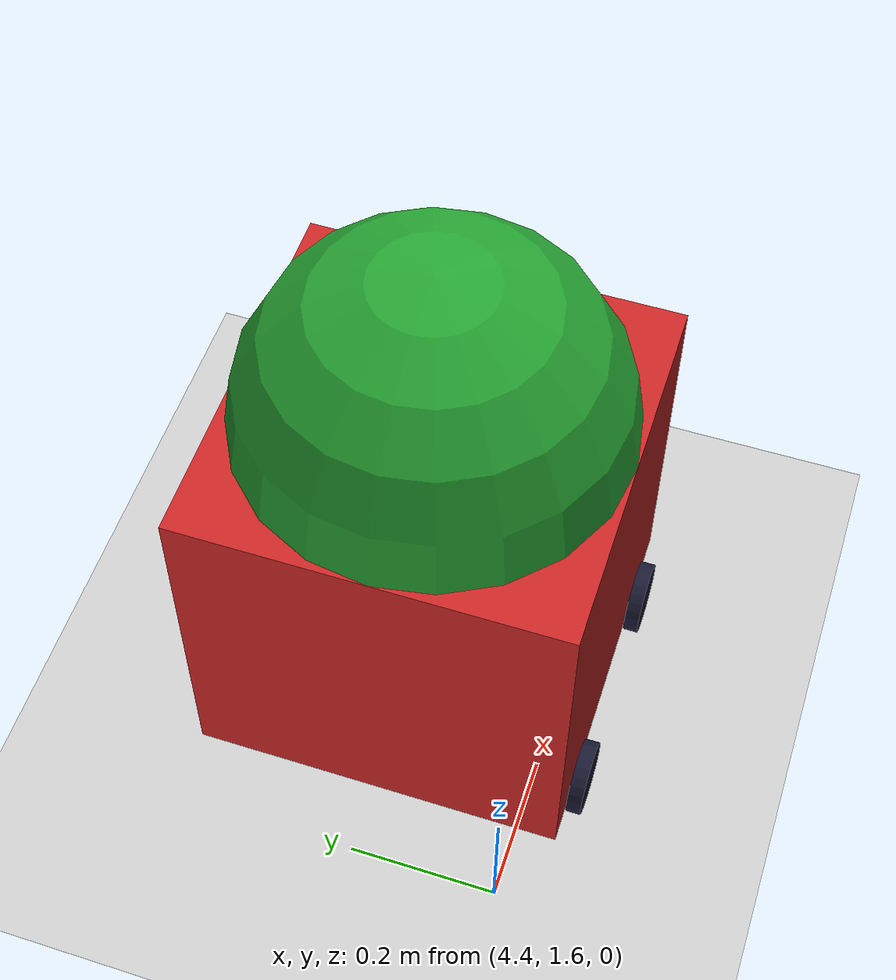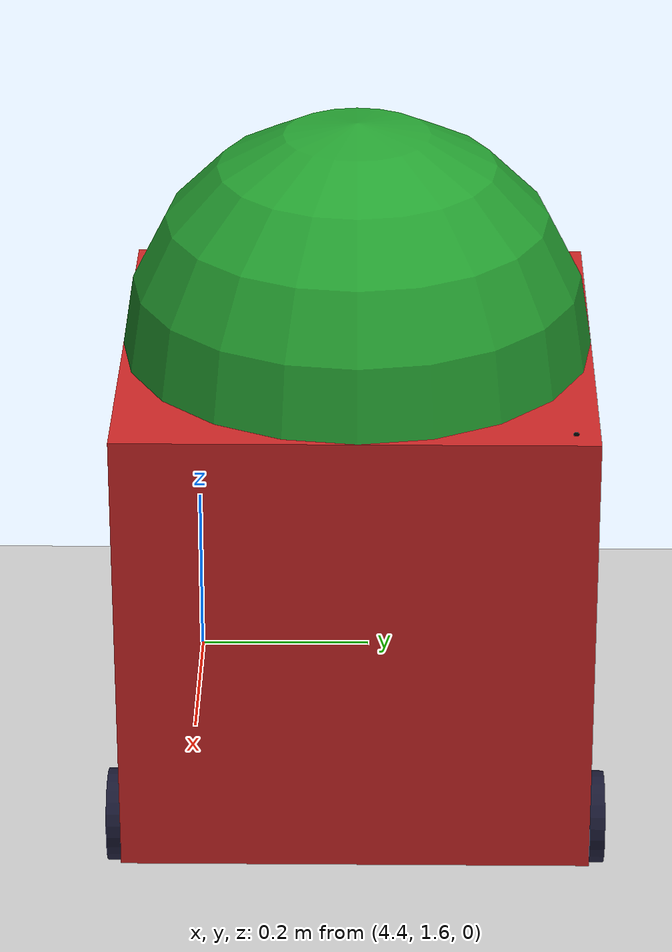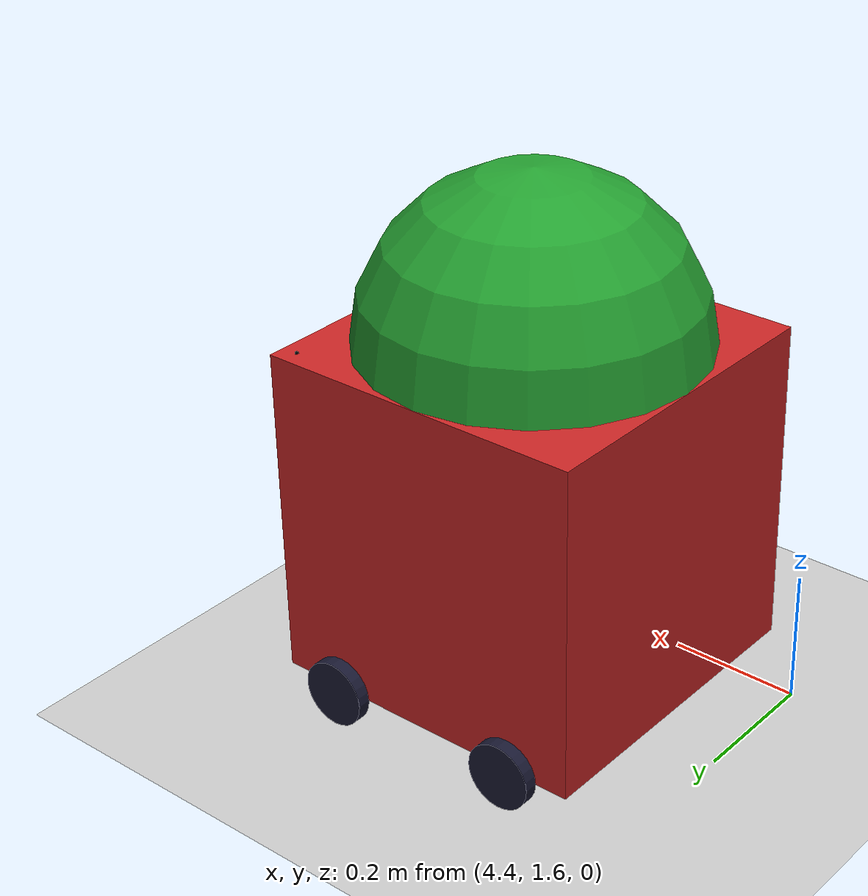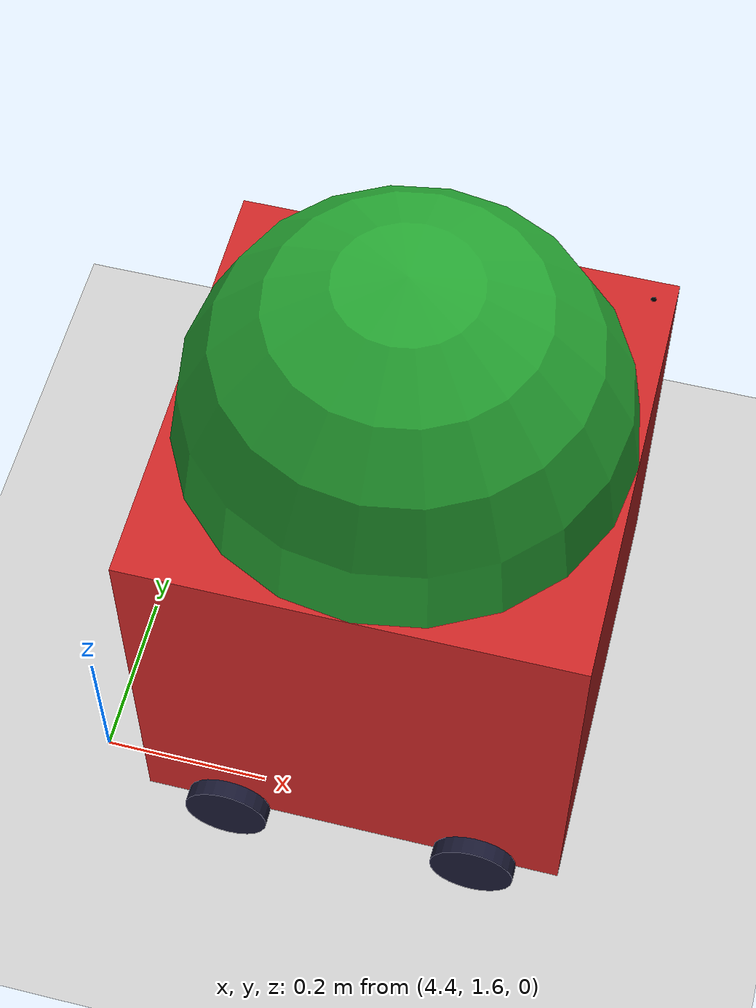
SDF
<sdf version="1.6">
 <world name="default">
  <model name="ground_plane">
   <static>1</static>
   <link name="link">
    <collision name="collision">
     <geometry><plane><normal>0 0 1</normal><size>100 100</size></plane></geometry>
     <surface><friction><ode><mu>100</mu><mu2>50</mu2></ode></friction></surface>
    </collision>
    <visual name="visual">
     <cast_shadows>0</cast_shadows>
     <geometry><plane><normal>0 0 1</normal><size>100 100</size></plane></geometry>
     <material>
      <script><uri>file://media/materials/scripts/gazebo.material</uri><name>Gazebo/Grey</name></script>
     </material>
    </visual>
   </link>
  </model>
  <model name="simplebot_0">
   <link name="robot_link">
    <pose>0 0 0.3 0 -0 0</pose>
    <inertial>
     <mass>1</mass>
     <inertia><ixx>1</ixx><ixy>0</ixy><ixz>0</ixz><iyy>1</iyy><iyz>0</iyz><izz>1</izz></inertia>
    </inertial>
    <visual name="head_visual">
     <pose>0 0 0.25 0 0 -2.5</pose>
     <geometry><sphere><radius>0.25</radius></sphere></geometry>
     <material>
      <shader type="pixel"><normal_map>__default__</normal_map></shader>
      <emissive>0 0 0 1</emissive>
      <ambient>0.3 0.3 0.3 1</ambient>
      <diffuse>0.7 0.7 0.7 1</diffuse>
      <specular>0.01 0.01 0.01 1</specular>
      <script><uri>file://media/materials/scripts/gazebo.material</uri><name>Gazebo/Green</name></script>
     </material>
    </visual>
    <visual name="body_visual">
     <geometry><box><size>0.5 0.5 0.5</size></box></geometry>
     <material>
      <shader type="pixel"><normal_map>__default__</normal_map></shader>
      <emissive>0 0 0 1</emissive>
      <ambient>1 0 0 1</ambient>
      <diffuse>1 0 0 1</diffuse>
      <specular>0.1 0.1 0.1 1</specular>
      <script><uri>file://media/materials/scripts/gazebo.material</uri><name>Gazebo/Red</name></script>
     </material>
    </visual>
    <visual name="power_led_visual">
     <pose>0.225 0.225 0.25 0 -0 0</pose>
     <geometry><sphere><radius>0.003</radius></sphere></geometry>
     <material>
      <ambient>0 0 0 1</ambient>
      <diffuse>0 0 0 1</diffuse>
      <specular>0 0 0 1</specular>
      <emissive>0 1 0 1</emissive>
     </material>
    </visual>
    <collision name="body_collision">
     <geometry><box><size>0.5 0.5 0.5</size></box></geometry>
     <surface>
      <friction>
       <ode><mu>1</mu><mu2>1</mu2><fdir1>0 0 0</fdir1><slip1>0</slip1><slip2>0</slip2></ode>
       <torsional>
        <coefficient>1</coefficient>
        <patch_radius>0</patch_radius>
        <surface_radius>0</surface_radius>
        <use_patch_radius>1</use_patch_radius>
        <ode><slip>0</slip></ode>
       </torsional>
      </friction>
      <bounce><restitution_coefficient>0</restitution_coefficient><threshold>1e+06</threshold></bounce>
      <contact>
       <collide_without_contact>0</collide_without_contact>
       <collide_without_contact_bitmask>1</collide_without_contact_bitmask>
       <collide_bitmask>1</collide_bitmask>
       <ode>
        <soft_cfm>0</soft_cfm>
        <soft_erp>0.2</soft_erp>
        <kp>1e+13</kp>
        <kd>1</kd>
        <max_vel>0.01</max_vel>
        <min_depth>0</min_depth>
       </ode>
       <bullet>
        <split_impulse>1</split_impulse>
        <split_impulse_penetration_threshold>-0.01</split_impulse_penetration_threshold>
        <soft_cfm>0</soft_cfm>
        <soft_erp>0.2</soft_erp>
        <kp>1e+13</kp>
        <kd>1</kd>
       </bullet>
      </contact>
     </surface>
    </collision>
   </link>
   <link name="wheel_1">
    <pose>0.15 -0.26 0.05 1.5707 -0 0</pose>
    <inertial>
     <mass>1</mass>
     <inertia><ixx>0.145833</ixx><ixy>0</ixy><ixz>0</ixz><iyy>0.145833</iyy><iyz>0</iyz><izz>0.125</izz></inertia>
    </inertial>
    <visual name="visual">
     <geometry><cylinder><radius>0.05</radius><length>0.02</length></cylinder></geometry>
     <material>
      <lighting>1</lighting>
      <script><uri>file://media/materials/scripts/gazebo.material</uri><name>Gazebo/Grey</name></script>
      <shader type="pixel"><normal_map>__default__</normal_map></shader>
      <ambient>0.1 0.1 0.1 1</ambient>
      <diffuse>0.1 0.1 0.2 1</diffuse>
      <specular>0.01 0.01 0.01 1</specular>
      <emissive>0 0 0 1</emissive>
     </material>
    </visual>
    <collision name="collision">
     <geometry><cylinder><radius>0.05</radius><length>0.02</length></cylinder></geometry>
     <surface>
      <friction>
       <ode><mu>1</mu><mu2>1</mu2><fdir1>0 0 0</fdir1><slip1>0</slip1><slip2>0</slip2></ode>
       <torsional>
        <coefficient>1</coefficient>
        <patch_radius>0</patch_radius>
        <surface_radius>0</surface_radius>
        <use_patch_radius>1</use_patch_radius>
        <ode><slip>0</slip></ode>
       </torsional>
      </friction>
      <bounce><restitution_coefficient>0</restitution_coefficient><threshold>1e+06</threshold></bounce>
      <contact>
       <collide_without_contact>0</collide_without_contact>
       <collide_without_contact_bitmask>1</collide_without_contact_bitmask>
       <collide_bitmask>1</collide_bitmask>
       <ode>
        <soft_cfm>0</soft_cfm>
        <soft_erp>0.2</soft_erp>
        <kp>1e+13</kp>
        <kd>1</kd>
        <max_vel>0.01</max_vel>
        <min_depth>0</min_depth>
       </ode>
       <bullet>
        <split_impulse>1</split_impulse>
        <split_impulse_penetration_threshold>-0.01</split_impulse_penetration_threshold>
        <soft_cfm>0</soft_cfm>
        <soft_erp>0.2</soft_erp>
        <kp>1e+13</kp>
        <kd>1</kd>
       </bullet>
      </contact>
     </surface>
    </collision>
   </link>
   <link name="wheel_2">
    <pose>0.15 0.26 0.05 1.5707 -0 0</pose>
    <inertial>
     <mass>1</mass>
     <inertia><ixx>0.145833</ixx><ixy>0</ixy><ixz>0</ixz><iyy>0.145833</iyy><iyz>0</iyz><izz>0.125</izz></inertia>
    </inertial>
    <visual name="visual">
     <geometry><cylinder><radius>0.05</radius><length>0.02</length></cylinder></geometry>
     <material>
      <lighting>1</lighting>
      <script><uri>file://media/materials/scripts/gazebo.material</uri><name>Gazebo/Grey</name></script>
      <shader type="pixel"><normal_map>__default__</normal_map></shader>
      <ambient>0.1 0.1 0.1 1</ambient>
      <diffuse>0.1 0.1 0.2 1</diffuse>
      <specular>0.01 0.01 0.01 1</specular>
      <emissive>0 0 0 1</emissive>
     </material>
    </visual>
    <collision name="collision">
     <geometry><cylinder><radius>0.05</radius><length>0.02</length></cylinder></geometry>
     <surface>
      <friction>
       <ode><mu>1</mu><mu2>1</mu2><fdir1>0 0 0</fdir1><slip1>0</slip1><slip2>0</slip2></ode>
       <torsional>
        <coefficient>1</coefficient>
        <patch_radius>0</patch_radius>
        <surface_radius>0</surface_radius>
        <use_patch_radius>1</use_patch_radius>
        <ode><slip>0</slip></ode>
       </torsional>
      </friction>
      <bounce><restitution_coefficient>0</restitution_coefficient><threshold>1e+06</threshold></bounce>
      <contact>
       <collide_without_contact>0</collide_without_contact>
       <collide_without_contact_bitmask>1</collide_without_contact_bitmask>
       <collide_bitmask>1</collide_bitmask>
       <ode>
        <soft_cfm>0</soft_cfm>
        <soft_erp>0.2</soft_erp>
        <kp>1e+13</kp>
        <kd>1</kd>
        <max_vel>0.01</max_vel>
        <min_depth>0</min_depth>
       </ode>
       <bullet>
        <split_impulse>1</split_impulse>
        <split_impulse_penetration_threshold>-0.01</split_impulse_penetration_threshold>
        <soft_cfm>0</soft_cfm>
        <soft_erp>0.2</soft_erp>
        <kp>1e+13</kp>
        <kd>1</kd>
       </bullet>
      </contact>
     </surface>
    </collision>
   </link>
   <link name="wheel_3">
    <pose>-0.15 -0.26 0.05 1.5707 -0 0</pose>
    <inertial>
     <mass>1</mass>
     <inertia><ixx>0.145833</ixx><ixy>0</ixy><ixz>0</ixz><iyy>0.145833</iyy><iyz>0</iyz><izz>0.125</izz></inertia>
    </inertial>
    <visual name="visual">
     <geometry><cylinder><radius>0.05</radius><length>0.02</length></cylinder></geometry>
     <material>
      <lighting>1</lighting>
      <script><uri>file://media/materials/scripts/gazebo.material</uri><name>Gazebo/Grey</name></script>
      <shader type="pixel"><normal_map>__default__</normal_map></shader>
      <ambient>0.1 0.1 0.1 1</ambient>
      <diffuse>0.1 0.1 0.2 1</diffuse>
      <specular>0.01 0.01 0.01 1</specular>
      <emissive>0 0 0 1</emissive>
     </material>
    </visual>
    <collision name="collision">
     <geometry><cylinder><radius>0.05</radius><length>0.02</length></cylinder></geometry>
     <surface>
      <friction>
       <ode><mu>1</mu><mu2>1</mu2><fdir1>0 0 0</fdir1><slip1>0</slip1><slip2>0</slip2></ode>
       <torsional>
        <coefficient>1</coefficient>
        <patch_radius>0</patch_radius>
        <surface_radius>0</surface_radius>
        <use_patch_radius>1</use_patch_radius>
        <ode><slip>0</slip></ode>
       </torsional>
      </friction>
      <bounce><restitution_coefficient>0</restitution_coefficient><threshold>1e+06</threshold></bounce>
      <contact>
       <collide_without_contact>0</collide_without_contact>
       <collide_without_contact_bitmask>1</collide_without_contact_bitmask>
       <collide_bitmask>1</collide_bitmask>
       <ode>
        <soft_cfm>0</soft_cfm>
        <soft_erp>0.2</soft_erp>
        <kp>1e+13</kp>
        <kd>1</kd>
        <max_vel>0.01</max_vel>
        <min_depth>0</min_depth>
       </ode>
       <bullet>
        <split_impulse>1</split_impulse>
        <split_impulse_penetration_threshold>-0.01</split_impulse_penetration_threshold>
        <soft_cfm>0</soft_cfm>
        <soft_erp>0.2</soft_erp>
        <kp>1e+13</kp>
        <kd>1</kd>
       </bullet>
      </contact>
     </surface>
    </collision>
   </link>
   <link name="wheel_4">
    <pose>-0.15 0.26 0.05 1.5707 -0 0</pose>
    <inertial>
     <mass>1</mass>
     <inertia><ixx>0.145833</ixx><ixy>0</ixy><ixz>0</ixz><iyy>0.145833</iyy><iyz>0</iyz><izz>0.125</izz></inertia>
    </inertial>
    <visual name="visual">
     <geometry><cylinder><radius>0.05</radius><length>0.02</length></cylinder></geometry>
     <material>
      <lighting>1</lighting>
      <script><uri>file://media/materials/scripts/gazebo.material</uri><name>Gazebo/Grey</name></script>
      <shader type="pixel"><normal_map>__default__</normal_map></shader>
      <ambient>0.1 0.1 0.1 1</ambient>
      <diffuse>0.1 0.1 0.2 1</diffuse>
      <specular>0.01 0.01 0.01 1</specular>
      <emissive>0 0 0 1</emissive>
     </material>
    </visual>
    <collision name="collision">
     <geometry><cylinder><radius>0.05</radius><length>0.02</length></cylinder></geometry>
     <surface>
      <friction>
       <ode><mu>1</mu><mu2>1</mu2><fdir1>0 0 0</fdir1><slip1>0</slip1><slip2>0</slip2></ode>
       <torsional>
        <coefficient>1</coefficient>
        <patch_radius>0</patch_radius>
        <surface_radius>0</surface_radius>
        <use_patch_radius>1</use_patch_radius>
        <ode><slip>0</slip></ode>
       </torsional>
      </friction>
      <bounce><restitution_coefficient>0</restitution_coefficient><threshold>1e+06</threshold></bounce>
      <contact>
       <collide_without_contact>0</collide_without_contact>
       <collide_without_contact_bitmask>1</collide_without_contact_bitmask>
       <collide_bitmask>1</collide_bitmask>
       <ode>
        <soft_cfm>0</soft_cfm>
        <soft_erp>0.2</soft_erp>
        <kp>1e+13</kp>
        <kd>1</kd>
        <max_vel>0.01</max_vel>
        <min_depth>0</min_depth>
       </ode>
       <bullet>
        <split_impulse>1</split_impulse>
        <split_impulse_penetration_threshold>-0.01</split_impulse_penetration_threshold>
        <soft_cfm>0</soft_cfm>
        <soft_erp>0.2</soft_erp>
        <kp>1e+13</kp>
        <kd>1</kd>
       </bullet>
      </contact>
     </surface>
    </collision>
   </link>
   <joint name="robot_link_JOINT_0" type="revolute">
    <parent>robot_link</parent>
    <child>wheel_1</child>
    <axis>
     <xyz>0 0 1</xyz>
     <use_parent_model_frame>0</use_parent_model_frame>
     <limit>
      <lower>-1.79769e+308</lower>
      <upper>1.79769e+308</upper>
      <effort>-1</effort>
      <velocity>-1</velocity>
     </limit>
     <dynamics>
      <spring_reference>0</spring_reference>
      <spring_stiffness>0</spring_stiffness>
      <damping>0</damping>
      <friction>0</friction>
     </dynamics>
    </axis>
    <physics>
     <ode><limit><cfm>0</cfm><erp>0.2</erp></limit><suspension><cfm>0</cfm><erp>0.2</erp></suspension></ode>
    </physics>
   </joint>
   <joint name="robot_link_JOINT_2" type="revolute">
    <parent>robot_link</parent>
    <child>wheel_2</child>
    <axis>
     <xyz>0 0 1</xyz>
     <use_parent_model_frame>0</use_parent_model_frame>
     <limit>
      <lower>-1.79769e+308</lower>
      <upper>1.79769e+308</upper>
      <effort>-1</effort>
      <velocity>-1</velocity>
     </limit>
     <dynamics>
      <spring_reference>0</spring_reference>
      <spring_stiffness>0</spring_stiffness>
      <damping>0</damping>
      <friction>0</friction>
     </dynamics>
    </axis>
    <physics>
     <ode><limit><cfm>0</cfm><erp>0.2</erp></limit><suspension><cfm>0</cfm><erp>0.2</erp></suspension></ode>
    </physics>
   </joint>
   <joint name="robot_link_JOINT_3" type="revolute">
    <parent>robot_link</parent>
    <child>wheel_3</child>
    <axis>
     <xyz>0 0 1</xyz>
     <use_parent_model_frame>0</use_parent_model_frame>
     <limit>
      <lower>-1.79769e+308</lower>
      <upper>1.79769e+308</upper>
      <effort>-1</effort>
      <velocity>-1</velocity>
     </limit>
     <dynamics>
      <spring_reference>0</spring_reference>
      <spring_stiffness>0</spring_stiffness>
      <damping>0</damping>
      <friction>0</friction>
     </dynamics>
    </axis>
    <physics>
     <ode><limit><cfm>0</cfm><erp>0.2</erp></limit><suspension><cfm>0</cfm><erp>0.2</erp></suspension></ode>
    </physics>
   </joint>
   <joint name="robot_link_JOINT_4" type="revolute">
    <parent>robot_link</parent>
    <child>wheel_4</child>
    <axis>
     <xyz>0 0 1</xyz>
     <use_parent_model_frame>0</use_parent_model_frame>
     <limit>
      <lower>-1.79769e+308</lower>
      <upper>1.79769e+308</upper>
      <effort>-1</effort>
      <velocity>-1</velocity>
     </limit>
     <dynamics>
      <spring_reference>0</spring_reference>
      <spring_stiffness>0</spring_stiffness>
      <damping>0</damping>
      <friction>0</friction>
     </dynamics>
    </axis>
    <physics>
     <ode><limit><cfm>0</cfm><erp>0.2</erp></limit><suspension><cfm>0</cfm><erp>0.2</erp></suspension></ode>
    </physics>
   </joint>
   <static>1</static>
   <pose>4.72586 1.79106 0 0 -0 0</pose>
  </model>
 </world>
</sdf>
